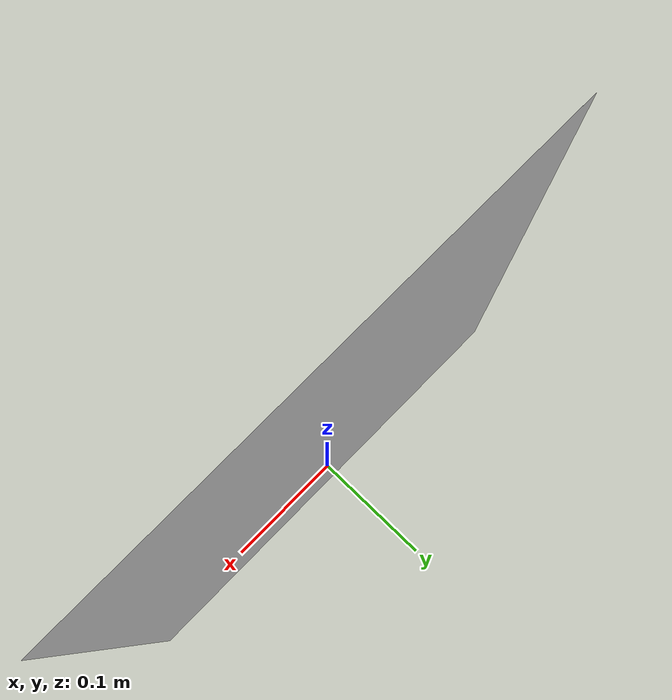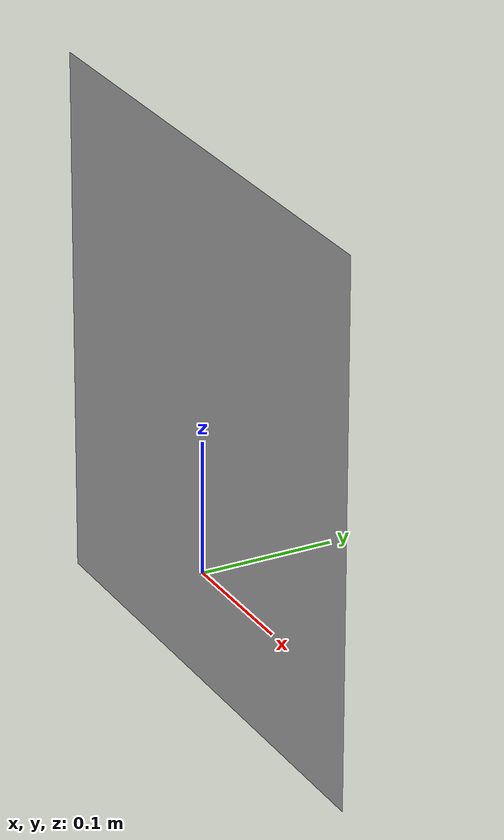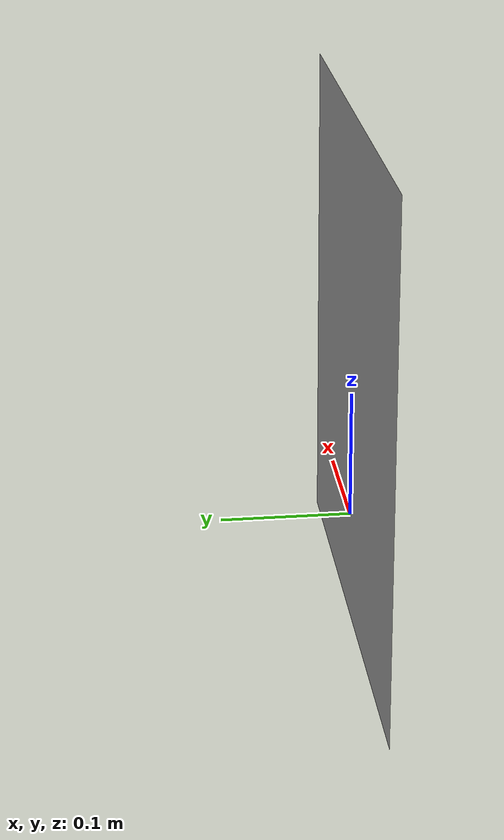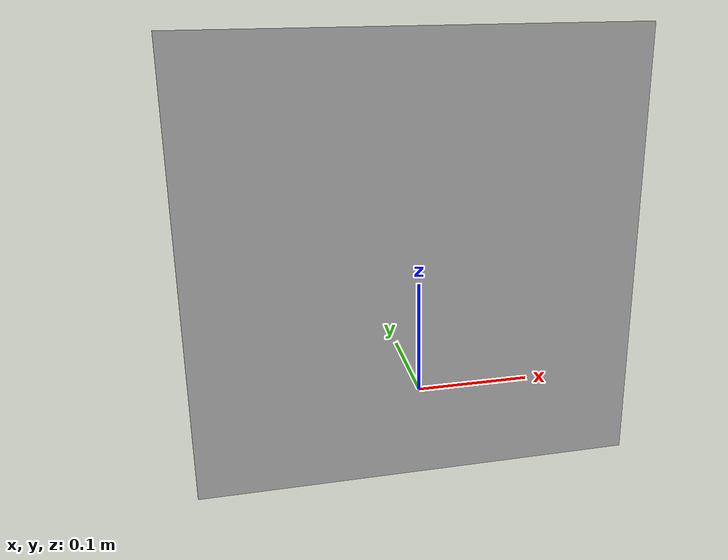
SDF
<?xml version="1.0" ?>
<sdf version="1.5">
  <model name="Plano26">
    <link name="link">
      <pose>0 0 0.115 0 0 0</pose>
      <gravity>0</gravity>
      <inertial>
        <mass>0.000001</mass>
        <inertia>
          <ixx>0.00058</ixx>
          <ixy>0</ixy>
          <ixz>0</ixz>
          <iyy>0.00058</iyy>
          <iyz>0</iyz>
          <izz>0.00019</izz>
        </inertia>
      </inertial>
      <collision name="collision">
        <geometry>
          <box>
            <size>0.4 0.000001 0.4</size>
          </box>
        </geometry>
      </collision>
      <visual name="visual">
        <geometry>
          <box>
            <size>0.4 0.000001 0.4</size>
          </box>
        </geometry>
        <material>
          <script>
            <uri>model://Plano26/materials/scripts</uri>
            <uri>model://Plano26/materials/textures</uri>
            <name>Plano26/Diffuse</name>
          </script>
        </material>
      </visual>
    </link>
  </model>
</sdf>
